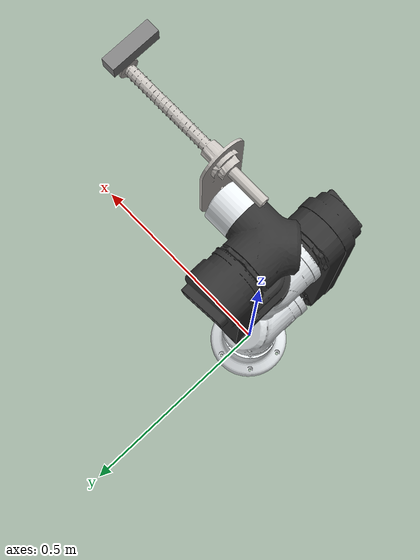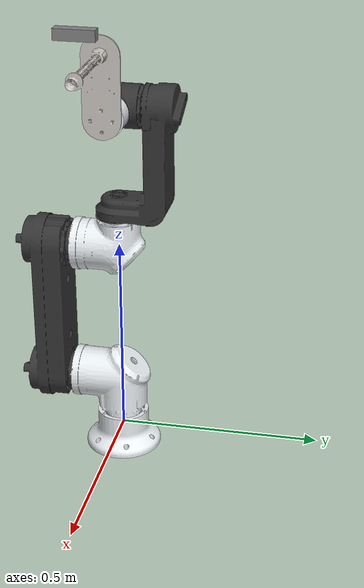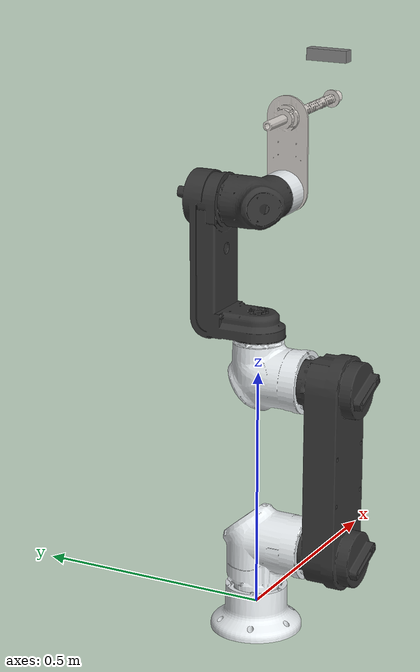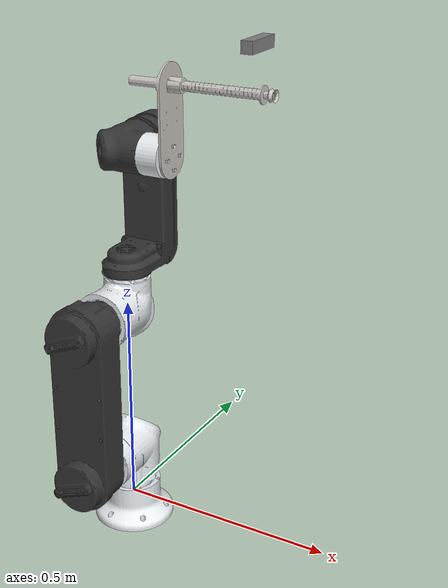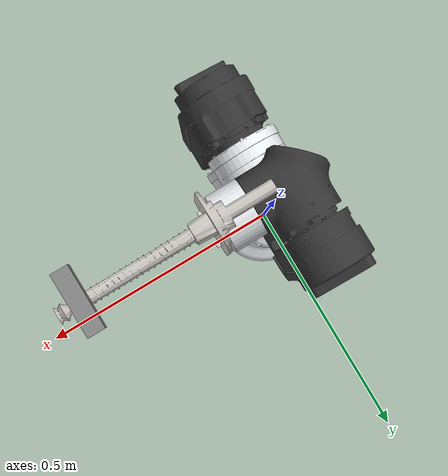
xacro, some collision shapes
<?xml version="1.0"?>
<robot name="owl_robot" xmlns:xacro="http://wiki.ros.org/xacro">

    <xacro:include filename="$(find owl_gazebo)/urdf/owl_6.5_gazebo_control_vaccum.xacro"/>
    <xacro:include filename="$(find owl_perception)/urdf/camera/d435/d435.urdf.xacro"/>

    <!-- D 435 Sensor -->
    <xacro:sensor_d435 name="mount" parent="base_link">
        <origin xyz="0.3 0.0 1.1" rpy="0 1.57 0" />
    </xacro:sensor_d435>

</robot>

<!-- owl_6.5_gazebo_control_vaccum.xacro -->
<robot name="owl_robot" xmlns:xacro="http://wiki.ros.org/xacro">

    <xacro:include filename="$(find owl_description)/urdf/6.5/owl.xacro"/>
    <xacro:include filename="$(find owl_description)/urdf/6.5/gazebo/gazebo_6.5_control.xacro"/>

    <!-- Robotiq 2F 85 Macros-->
    <xacro:include filename="$(find owl_description)/urdf/grippers/vaccum/vaccum_gripper.xacro"/>

    <!-- OWL 6.5 Robot-->
    <xacro:owl_arm parent="world">
        <origin xyz="0.0 0.0 0.0" rpy="0 0 0" />
    </xacro:owl_arm>

    <!-- OWL 6.5 Gazebo control-->
    <xacro:gazebo_control/>

    <!-- Adding Vaccum -->
    <xacro:vaccum_gripper parent="tcp">
        <origin xyz="0.0 0.0 0.0" rpy="1.57 0 3.14" />
    </xacro:vaccum_gripper>

</robot>

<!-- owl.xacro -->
<robot name="owr_6.5" xmlns:xacro="http://ros.org/wiki/xacro">

<!-- Macro of OWL 6.5 without any end effector -->

<xacro:property name="base_mass" value="2.39" />
<xacro:property name="shoulder_mass" value="4.613" />
<xacro:property name="package_name" value="owl_description" />
 <xacro:property name="default_color" value="0.89804 0.91765 0.92941 1" />
 <xacro:property name="gray_color" value="0.2 0.2 0.2 1.0" />

 <xacro:macro name="owl_arm" params="parent *origin">

    <link name="${parent}" />
    <joint name="virtual_joint" type="fixed">
      <xacro:insert_block name="origin" />
      <parent link="${parent}" />
      <child link="base_link" />
    </joint>
    <link name="base_link">
      <inertial>
        <origin
        xyz="2.7395E-05 -0.01813 4.3722E-05"
        rpy="0 0 0" />
        <mass
        value="${base_mass}" />
        <inertia
        ixx="0.0060063"
        ixy="-2.5541E-15"
        ixz="-2.5603E-07"
        iyy="0.0095451"
        iyz="5.1619E-15"
        izz="0.006006" />
      </inertial>
      <visual>
        <origin
        xyz="0 0 0"
        rpy="0 0 0" />
        <geometry>
          <mesh
          filename="package://${package_name}/meshes/6.5/visual/owl_robot/base_link.stl" />
        </geometry>
        <material
        name="">
            <color rgba="${default_color}" />
        </material>
      </visual>
      <collision>
        <origin
        xyz="0 0 0"
        rpy="0 0 0" />
        <geometry>
          <mesh
          filename="package://${package_name}/meshes/6.5/collision/owl_robot/base_link.stl" />
        </geometry>
      </collision>
    </link>

    <link
    name="shoulder_link">
      <inertial>
        <origin
        xyz="0.00042134 0.034391 -0.10382"
        rpy="0 0 0" />
        <mass
        value="${shoulder_mass}" />
        <inertia
        ixx="0.0035279"
        ixy="-5.6452E-06"
        ixz="-9.4882E-07"
        iyy="0.0046955"
        iyz="0.00045199"
        izz="0.0048177" />
      </inertial>
      <visual>
        <origin
        xyz="0 0 0"
        rpy="0 0 0" />
        <geometry>
          <mesh
          filename="package://${package_name}/meshes/6.5/visual/owl_robot/shoulder_link.stl" />
        </geometry>
        <material
        name="">
          <color rgba="${default_color}" />
        </material>
      </visual>
      <collision>
        <origin
        xyz="0 0 0"
        rpy="0 0 0" />
        <geometry>
          <mesh
          filename="package://${package_name}/meshes/6.5/collision/owl_robot/shoulder_link.stl" />
        </geometry>
      </collision>
    </link>

    <joint
    name="BJ"
    type="revolute">
      <origin
      xyz="0 0 0"
      rpy="-3.1416 0 0" />
      <parent
      link="base_link" />
      <child
      link="shoulder_link" />
      <axis
      xyz="0 0 1" />
      <limit effort="500" velocity="50" lower="-3.14" upper="3.14"/>
    </joint>
    <link
    name="link1">
      <inertial>
        <origin
        xyz=" 0.17795 0.00011012 -0.085428"
        rpy="0 0 0" />
        <mass
        value="9.431" />
        <inertia
        ixx="0.0052455"
        ixy="1.4977E-05"
        ixz="2.6778E-05"
        iyy="0.028778"
        iyz="-3.8624E-06"
        izz="0.032177" />
      </inertial>
      <visual>
        <origin
        xyz="0 0 0"
        rpy="0 0 0" />
        <geometry>
          <mesh
          filename="package://${package_name}/meshes/6.5/visual/owl_robot/link1.stl" />
        </geometry>
        <material
        name="">
            <color rgba="${gray_color}" />
        </material>
      </visual>
      <collision>
        <origin
        xyz="0 0 0"
        rpy="0 0 0" />
        <geometry>
          <mesh
          filename="package://${package_name}/meshes/6.5/collision/owl_robot/link1.stl" />
        </geometry>
      </collision>
    </link>
    <joint
    name="SJ"
    type="revolute">
      <origin
      xyz="0.00018339 0.066603 -0.1405"
      rpy="0.58944 1.5675 -0.983" />
      <parent
      link="shoulder_link" />
      <child
      link="link1" />
      <axis
      xyz="0.0027142 -0.0011243 1" />
      <limit effort="500" velocity="50" lower="-1.6" upper="1.6"/>
    </joint>
    <link
    name="elbow_link">
      <inertial>
        <origin
        xyz="0.00023616 -0.028792 -0.029823"
        rpy="0 0 0" />
        <mass
        value="4.613" />
        <inertia
        ixx="0.0023499"
        ixy="-2.7675E-06"
        ixz="-4.1087E-07"
        iyy="0.0030181"
        iyz="-0.00026183"
        izz="0.0035661" />
      </inertial>
      <visual>
        <origin
        xyz="0 0 0"
        rpy="0 0 0" />
        <geometry>
          <mesh
          filename="package://${package_name}/meshes/6.5/visual/owl_robot/elbow_link.stl" />
        </geometry>
        <material
        name="">
          <color rgba="${default_color}" />
        </material>
      </visual>
      <collision>
        <origin
        xyz="0 0 0"
        rpy="0 0 0" />
        <geometry>
          <mesh
          filename="package://${package_name}/meshes/6.5/collision/owl_robot/elbow_link.stl" />
        </geometry>
      </collision>
    </link>
    <joint
    name="EJ"
    type="revolute">
      <origin
      xyz="0.35575 0 -0.00096557"
      rpy="3.1389 -0.0018334 -1.5781" />
      <parent
      link="link1" />
      <child
      link="elbow_link" />
      <axis
      xyz="0 0 1" />
      <limit effort="500" velocity="50" lower="-2.8" upper="3.14"/>
    </joint>
    <link
    name="link2">
      <inertial>
        <origin
        xyz="0.00015054 -0.075078 0.13834"
        rpy="0 0 0" />
        <mass
        value="2.4407" />
        <inertia
        ixx="0.009134"
        ixy="-3.9978E-06"
        ixz="-4.8015E-06"
        iyy="0.010823"
        iyz="0.00068065"
        izz="0.0041094" />
      </inertial>
      <visual>
        <origin
        xyz="0 0 0"
        rpy="0 0 0" />
        <geometry>
          <mesh
          filename="package://${package_name}/meshes/6.5/visual/owl_robot/link2.stl" />
        </geometry>
        <material
        name="">
          <color rgba="${gray_color}" />
        </material>
      </visual>
      <collision>
        <origin
        xyz="0 0 0"
        rpy="0 0 0" />
        <geometry>
          <mesh
          filename="package://${package_name}/meshes/6.5/collision/owl_robot/link2.stl" />
        </geometry>
      </collision>
    </link>
    <joint
    name="W1J"
    type="revolute">
      <origin
      xyz="0.00019567 -0.079361 -0.066603"
      rpy="1.5708 -0.0023608 0" />
      <parent
      link="elbow_link" />
      <child
      link="link2" />
      <axis
      xyz="0 0 -1" />
      <limit effort="500" velocity="50" lower="-2.84489" upper="2.84489"/>
    </joint>
    <link
    name="w2w3_link">
      <inertial>
        <origin
        xyz="0.00025923 0.029764 0.027271"
        rpy="0 0 0" />
        <mass
        value="3.118" />
        <inertia
        ixx="0.0014884"
        ixy="2.1526E-06"
        ixz="6.6731E-06"
        iyy="0.0016882"
        iyz="0.0001816"
        izz="0.0019291" />
      </inertial>
      <visual>
        <origin
        xyz="0 0 0"
        rpy="0 0 0" />
        <geometry>
          <mesh
          filename="package://${package_name}/meshes/6.5/visual/owl_robot/w2w3_link.stl" />
        </geometry>
        <material
        name="">
          <color rgba="${gray_color}" />
        </material>
      </visual>
      <collision>
        <origin
        xyz="0 0 0"
        rpy="0 0 0" />
        <geometry>
          <mesh
          filename="package://${package_name}/meshes/6.5/collision/owl_robot/w2w3_link.stl" />
        </geometry>
      </collision>
    </link>
    <joint
    name="W2J"
    type="revolute">
      <origin
      xyz="0 0 0.27639"
      rpy="2.745 -1.5667 -1.1726" />
      <parent
      link="link2" />
      <child
      link="w2w3_link" />
      <axis
      xyz="0.0037507 -0.00083382 0.99999" />
      <limit effort="500" velocity="50" lower="-1.6" upper="0.78"/>
      <safety_controller k_position="100" k_velocity="1.5" soft_lower_limit="-1.857" soft_upper_limit="0.8"/>
    </joint>
    <link
    name="end_effector_link">
      <inertial>
        <origin
        xyz="2.2451E-05 -0.00060487 0.098537"
        rpy="0 0 0" />
        <mass
        value="0.188" />
        <inertia
        ixx="0.00017935"
        ixy="-3.2299E-08"
        ixz="-2.1374E-07"
        iyy="0.00017907"
        iyz="-4.545E-07"
        izz="0.00025742" />
      </inertial>
      <visual>
        <origin
        xyz="0 0 0"
        rpy="0 0 0" />
        <geometry>
          <mesh
          filename="package://${package_name}/meshes/6.5/visual/owl_robot/end_effector_link.stl" />
        </geometry>
        <material
        name="">
          <color rgba="${default_color}" />
        </material>
      </visual>
      <collision>
        <origin
        xyz="0 0 0"
        rpy="0 0 0" />
        <geometry>
          <mesh
          filename="package://${package_name}/meshes/6.5/collision/owl_robot/end_effector_link.stl" />
        </geometry>
      </collision>
    </link>
    <joint
    name="W3J"
    type="revolute">
      <origin
      xyz="0 0 0"
      rpy="-1.2578 -1.5668 -0.31786" />
      <limit effort="500" velocity="50" lower="-3.1" upper="3.1"/>
      <parent
      link="w2w3_link" />
      <child
      link="end_effector_link" />
      <axis
      xyz="0 0 1" />
    </joint>
    <xacro:arg name="xyz" default="0 0 0" />
    <xacro:arg name="rpy" default="0 0 0" />
    <xacro:arg name="pay_load" default="1e-9" />
    <link name="tcp">
      <inertial>
        <origin rpy="$(arg rpy)" xyz="$(arg xyz)"   />
        <mass value="$(arg pay_load)" />
        <inertia ixx="0" ixy="0" ixz="0" iyy="0" iyz="0" izz="0" />
      </inertial>
    </link>
    <joint name="tcp_frame" type="fixed">
      <origin xyz="4.33681e-19 0 0.1225" rpy="5.94633e-15 -1.33504e-14 -1.5708" />
      <parent link="end_effector_link" />
      <child link="tcp" />
      <axis xyz="0 0 0"/>
    </joint>
  </xacro:macro>
</robot>

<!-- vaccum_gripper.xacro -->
<robot xmlns:xacro="http://ros.org/wiki/xacro">

<xacro:property name="package_name" value="owl_description" />

<!-- Macro of Vaccum Gripper -->

<xacro:macro name="vaccum_gripper" params="parent *origin">
  <link name="gripper_link">
    <inertial>
      <origin
        xyz="0.092094 -0.0025024 -0.013531"
        rpy="0 0 0" />
      <mass
        value="0.99242" />
      <inertia
        ixx="0.0019778"
        ixy="-9.0867E-08"
        ixz="-1.3288E-08"
        iyy="0.00448"
        iyz="-3.6223E-08"
        izz="0.003475" />
    </inertial>
    <visual>
      <origin
        xyz="0 0 0"
        rpy="0 0 0" />
      <geometry>
        <mesh
          filename="package://${package_name}/meshes/grippers/vaccum/base_link.stl" />
      </geometry>
      <material
        name="">
        <color
          rgba="0.77647 0.75686 0.73725 1" />
      </material>
    </visual>
    <collision>
      <origin
        xyz="0 0 0"
        rpy="0 0 0" />
      <geometry>
        <mesh
          filename="package://${package_name}/meshes/grippers/vaccum/base_link.stl" />
      </geometry>
    </collision>
  </link>

  <joint name="robot_ee" type="fixed">
      <xacro:insert_block name="origin" />
      <parent link="${parent}" />
      <child link="gripper_link" />

  </joint>

</xacro:macro>
</robot>

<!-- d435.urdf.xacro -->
<robot name="owl_robot" xmlns:xacro="http://ros.org/wiki/xacro">
  <!--File includes-->
  <xacro:include filename="$(find owl_perception)/urdf/camera/d435/d435.gazebo.xacro"/>

  <xacro:macro name="sensor_d435" params="name topics_ns:=camera parent *origin publish_pointcloud:=true">
    <xacro:property name="M_PI" value="3.1415926535897931" />

    <!-- The following values are approximate, and the camera node
     publishing TF values with actual calibrated camera extrinsic values -->
    <xacro:property name="d435_cam_depth_to_left_ir_offset" value="0.0"/>
    <xacro:property name="d435_cam_depth_to_right_ir_offset" value="-0.050"/>
    <xacro:property name="d435_cam_depth_to_color_offset" value="0.015"/>

    <!-- The following values model the aluminum peripherial case for the
    D435 camera, with the camera joint represented by the actual
    peripherial camera tripod mount -->
    <xacro:property name="d435_cam_width" value="0.090"/>
    <xacro:property name="d435_cam_height" value="0.025"/>
    <xacro:property name="d435_cam_depth" value="0.02505"/>
    <xacro:property name="d435_cam_mount_from_center_offset" value="0.0149"/>

    <!-- The following offset is relative the the physical D435 camera peripherial
    camera tripod mount -->
    <xacro:property name="d435_cam_depth_px" value="${d435_cam_mount_from_center_offset}"/>
    <xacro:property name="d435_cam_depth_py" value="0.0175"/>
    <xacro:property name="d435_cam_depth_pz" value="${d435_cam_height/2}"/>

    <material name="${name}_aluminum">
    <color rgba="0.5 0.5 0.5 1"/>
    </material>

    <!-- camera body, with origin at bottom screw mount -->
    <joint name="${name}_joint" type="fixed">
      <xacro:insert_block name="origin" />
      <parent link="${parent}"/>
      <child link="${name}_bottom_screw_frame" />
    </joint>

    <link name="${name}_bottom_screw_frame"/>

    <joint name="${name}_link_joint" type="fixed">
      <origin xyz="0 ${d435_cam_depth_py} ${d435_cam_depth_pz}" rpy="0 0 0"/>
      <parent link="${name}_bottom_screw_frame"/>
      <child link="${name}_link" />
    </joint>

    <link name="${name}_link">
      <visual>
      <origin xyz="${d435_cam_mount_from_center_offset} ${-d435_cam_depth_py} 0" rpy="${M_PI/2} 0 ${M_PI/2}"/>
        <geometry>
          <mesh filename="package://owl_perception/meshes/camera/d435/d435.stl" />
        </geometry>
        <material name="${name}_aluminum"/>
      </visual>
      <collision>
        <origin xyz="0 ${-d435_cam_depth_py} 0" rpy="0 0 0"/>
        <geometry>
        <box size="${d435_cam_depth} ${d435_cam_width} ${d435_cam_height}"/>
        </geometry>
      </collision>
      <inertial>
        <!-- The following are not reliable values, and should not be used for modeling -->
        <mass value="0.564" />
        <origin xyz="0 0 0" />
        <inertia ixx="0.003881243" ixy="0.0" ixz="0.0" iyy="0.000498940" iyz="0.0" izz="0.003879257" />
      </inertial>
    </link>

    <!-- camera depth joints and links -->
    <joint name="${name}_depth_joint" type="fixed">
      <origin xyz="0 0 0" rpy="0 0 0"/>
      <parent link="${name}_link"/>
      <child link="${name}_depth_frame" />
    </joint>
    <link name="${name}_depth_frame"/>

    <joint name="${name}_depth_optical_joint" type="fixed">
      <origin xyz="0 0 0" rpy="${-M_PI/2} 0 ${-M_PI/2}" />
      <parent link="${name}_depth_frame" />
      <child link="${name}_depth_optical_frame" />
    </joint>
    <link name="${name}_depth_optical_frame"/>

    <!-- camera left IR joints and links -->
    <joint name="${name}_left_ir_joint" type="fixed">
      <origin xyz="0 ${d435_cam_depth_to_left_ir_offset} 0" rpy="0 0 0" />
      <parent link="${name}_depth_frame" />
      <child link="${name}_left_ir_frame" />
    </joint>
    <link name="${name}_left_ir_frame"/>

    <joint name="${name}_left_ir_optical_joint" type="fixed">
      <origin xyz="0 0 0" rpy="${-M_PI/2} 0 ${-M_PI/2}" />
      <parent link="${name}_left_ir_frame" />
      <child link="${name}_left_ir_optical_frame" />
    </joint>
    <link name="${name}_left_ir_optical_frame"/>

    <!-- camera right IR joints and links -->
    <joint name="${name}_right_ir_joint" type="fixed">
      <origin xyz="0 ${d435_cam_depth_to_right_ir_offset} 0" rpy="0 0 0" />
      <parent link="${name}_depth_frame" />
      <child link="${name}_right_ir_frame" />
    </joint>
    <link name="${name}_right_ir_frame"/>

    <joint name="${name}_right_ir_optical_joint" type="fixed">
      <origin xyz="0 0 0" rpy="${-M_PI/2} 0 ${-M_PI/2}" />
      <parent link="${name}_right_ir_frame" />
      <child link="${name}_right_ir_optical_frame" />
    </joint>
    <link name="${name}_right_ir_optical_frame"/>

    <!-- camera color joints and links -->
    <joint name="${name}_color_joint" type="fixed">
      <origin xyz="0 ${d435_cam_depth_to_color_offset} 0" rpy="0 0 0" />
      <parent link="${name}_depth_frame" />
      <child link="${name}_color_frame" />
    </joint>
    <link name="${name}_color_frame"/>

    <joint name="${name}_color_optical_joint" type="fixed">
      <origin xyz="0 0 0" rpy="${-M_PI/2} 0 ${-M_PI/2}" />
      <parent link="${name}_color_frame" />
      <child link="${name}_color_optical_frame" />
    </joint>
    <link name="${name}_color_optical_frame"/>

    <!-- Realsense Gazebo Plugin -->
    <xacro:gazebo_d435 camera_name="${name}" reference_link="${name}_link" topics_ns="${topics_ns}" depth_optical_frame="${name}_depth_optical_frame" color_optical_frame="${name}_color_optical_frame" infrared1_optical_frame="${name}_left_ir_optical_frame" infrared2_optical_frame="${name}_right_ir_optical_frame" publish_pointcloud="${publish_pointcloud}"/>

    <gazebo reference="${name}_bottom_screw_frame">
      <turnGravityOff>true</turnGravityOff>
    </gazebo>
    <gazebo reference="${name}_link">
      <turnGravityOff>true</turnGravityOff>
    </gazebo>
    <gazebo reference="${name}_depth_frame">
      <turnGravityOff>true</turnGravityOff>
    </gazebo>
    <gazebo reference="${name}_depth_optical_frame">
      <turnGravityOff>true</turnGravityOff>
    </gazebo>
    <gazebo reference="${name}_left_ir_frame">
      <turnGravityOff>true</turnGravityOff>
    </gazebo>
    <gazebo reference="${name}_left_ir_optical_frame">
      <turnGravityOff>true</turnGravityOff>
    </gazebo>
    <gazebo reference="${name}_right_ir_frame">
      <turnGravityOff>true</turnGravityOff>
    </gazebo>
    <gazebo reference="${name}_right_ir_optical_frame">
      <turnGravityOff>true</turnGravityOff>
    </gazebo>
    <gazebo reference="${name}_color_frame">
      <turnGravityOff>true</turnGravityOff>
    </gazebo>
    <gazebo reference="${name}_color_optical_frame">
      <turnGravityOff>true</turnGravityOff>
    </gazebo>

  </xacro:macro>
</robot>
